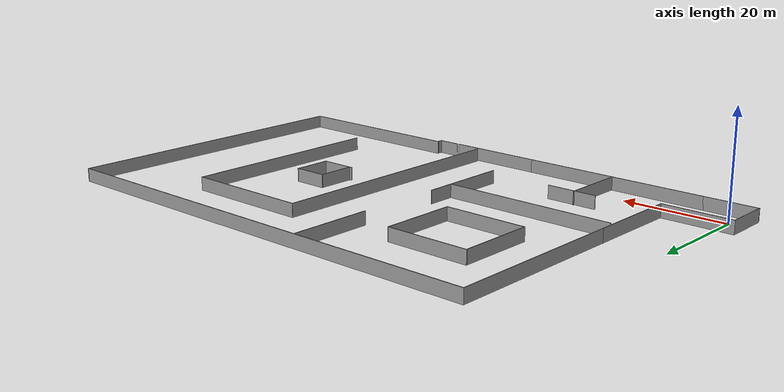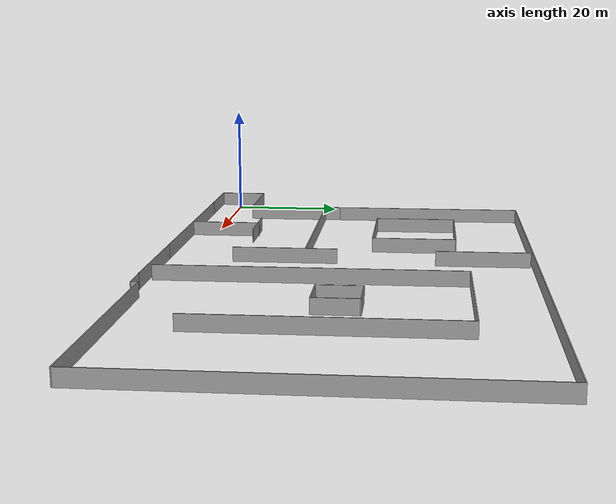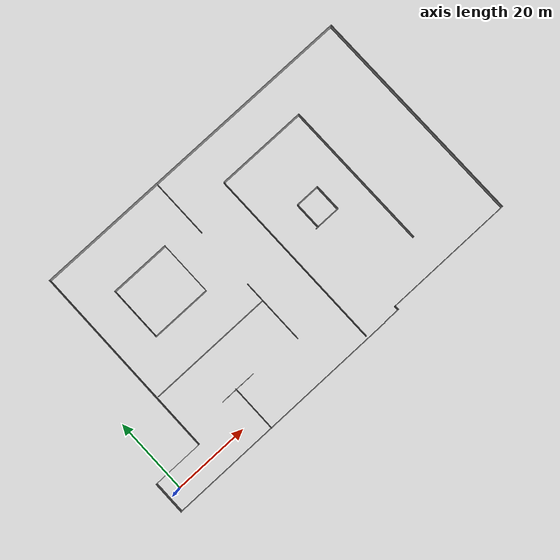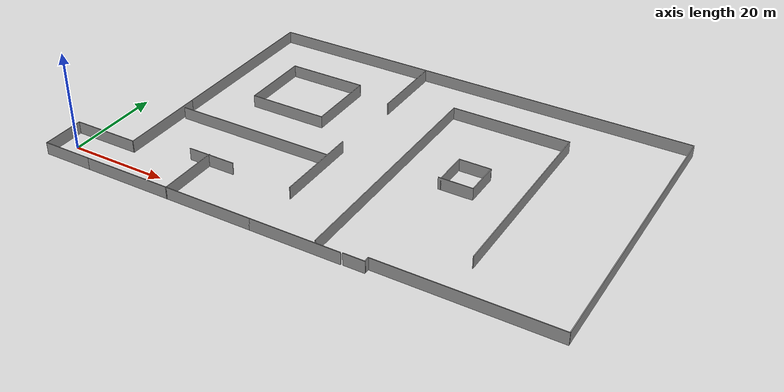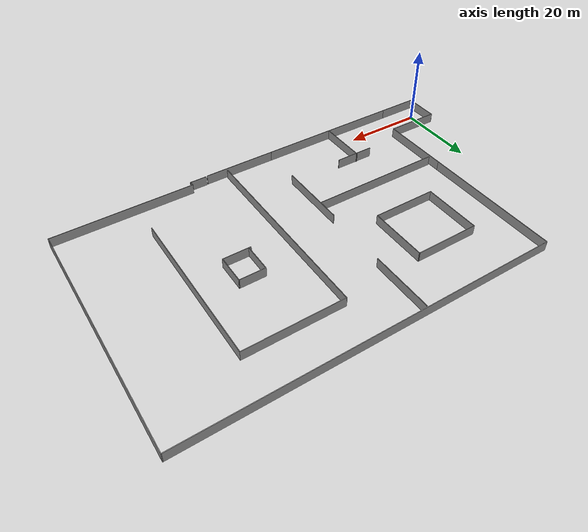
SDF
<?xml version='1.0'?>
<sdf version='1.6'>
  <model name='factory.world'>
    <pose frame=''>48.545 25.9841 0 0 -0 0</pose>
    <link name='Wall_0'>
      <collision name='Wall_0_Collision'>
        <geometry>
          <box>
            <size>10.25 0.15 2.5</size>
          </box>
        </geometry>
        <pose frame=''>0 0 1.25 0 -0 0</pose>
      </collision>
      <visual name='Wall_0_Visual'>
        <pose frame=''>0 0 1.25 0 -0 0</pose>
        <geometry>
          <box>
            <size>10.25 0.15 2.5</size>
          </box>
        </geometry>
        <material>
          <script>
            <uri>file://media/materials/scripts/gazebo.material</uri>
            <name>Gazebo/Grey</name>
          </script>
          <ambient>1 1 1 1</ambient>
        </material>
        <meta>
          <layer>0</layer>
        </meta>
      </visual>
      <pose frame=''>-46.675 -30.2541 0 0 -0 0</pose>
    </link>
    <link name='Wall_10'>
      <collision name='Wall_10_Collision'>
        <geometry>
          <box>
            <size>34.5 0.15 2.5</size>
          </box>
        </geometry>
        <pose frame=''>0 0 1.25 0 -0 0</pose>
      </collision>
      <visual name='Wall_10_Visual'>
        <pose frame=''>0 0 1.25 0 -0 0</pose>
        <geometry>
          <box>
            <size>34.5 0.15 2.5</size>
          </box>
        </geometry>
        <material>
          <script>
            <uri>file://media/materials/scripts/gazebo.material</uri>
            <name>Gazebo/Grey</name>
          </script>
          <ambient>1 1 1 1</ambient>
        </material>
        <meta>
          <layer>0</layer>
        </meta>
      </visual>
      <pose frame=''>-38.375 13.1209 0 0 -0 1.5708</pose>
    </link>
    <link name='Wall_11'>
      <collision name='Wall_11_Collision'>
        <geometry>
          <box>
            <size>90.25 0.15 2.5</size>
          </box>
        </geometry>
        <pose frame=''>0 0 1.25 0 -0 0</pose>
      </collision>
      <visual name='Wall_11_Visual'>
        <pose frame=''>0 0 1.25 0 -0 0</pose>
        <geometry>
          <box>
            <size>90.25 0.15 2.5</size>
          </box>
        </geometry>
        <material>
          <script>
            <uri>file://media/materials/scripts/gazebo.material</uri>
            <name>Gazebo/Grey</name>
          </script>
          <ambient>1 1 1 1</ambient>
        </material>
        <meta>
          <layer>0</layer>
        </meta>
      </visual>
      <pose frame=''>6.675 30.2959 0 0 -0 0</pose>
    </link>
    <link name='Wall_12'>
      <collision name='Wall_12_Collision'>
        <geometry>
          <box>
            <size>59.5 0.15 2.5</size>
          </box>
        </geometry>
        <pose frame=''>0 0 1.25 0 -0 0</pose>
      </collision>
      <visual name='Wall_12_Visual'>
        <pose frame=''>0 0 1.25 0 -0 0</pose>
        <geometry>
          <box>
            <size>59.5 0.15 2.5</size>
          </box>
        </geometry>
        <material>
          <script>
            <uri>file://media/materials/scripts/gazebo.material</uri>
            <name>Gazebo/Grey</name>
          </script>
          <ambient>1 1 1 1</ambient>
        </material>
        <meta>
          <layer>0</layer>
        </meta>
      </visual>
      <pose frame=''>51.725 0.620905 0 0 -0 -1.5708</pose>
    </link>
    <link name='Wall_13'>
      <collision name='Wall_13_Collision'>
        <geometry>
          <box>
            <size>34.75 0.15 2.5</size>
          </box>
        </geometry>
        <pose frame=''>0 0 1.25 0 -0 0</pose>
      </collision>
      <visual name='Wall_13_Visual'>
        <pose frame=''>0 0 1.25 0 -0 0</pose>
        <geometry>
          <box>
            <size>34.75 0.15 2.5</size>
          </box>
        </geometry>
        <material>
          <script>
            <uri>file://media/materials/scripts/gazebo.material</uri>
            <name>Gazebo/Grey</name>
          </script>
          <ambient>1 1 1 1</ambient>
        </material>
        <meta>
          <layer>0</layer>
        </meta>
      </visual>
      <pose frame=''>34.425 -29.0541 0 0 -0 3.14159</pose>
    </link>
    <link name='Wall_14'>
      <collision name='Wall_14_Collision'>
        <geometry>
          <box>
            <size>1.25 0.15 2.5</size>
          </box>
        </geometry>
        <pose frame=''>0 0 1.25 0 -0 0</pose>
      </collision>
      <visual name='Wall_14_Visual'>
        <pose frame=''>0 0 1.25 0 -0 0</pose>
        <geometry>
          <box>
            <size>1.25 0.15 2.5</size>
          </box>
        </geometry>
        <material>
          <script>
            <uri>file://media/materials/scripts/gazebo.material</uri>
            <name>Gazebo/Grey</name>
          </script>
          <ambient>1 1 1 1</ambient>
        </material>
        <meta>
          <layer>0</layer>
        </meta>
      </visual>
      <pose frame=''>17.125 -29.6041 0 0 -0 -1.5708</pose>
    </link>
    <link name='Wall_15'>
      <collision name='Wall_15_Collision'>
        <geometry>
          <box>
            <size>4.25 0.15 2.5</size>
          </box>
        </geometry>
        <pose frame=''>0 0 1.25 0 -0 0</pose>
      </collision>
      <visual name='Wall_15_Visual'>
        <pose frame=''>0 0 1.25 0 -0 0</pose>
        <geometry>
          <box>
            <size>4.25 0.15 2.5</size>
          </box>
        </geometry>
        <material>
          <script>
            <uri>file://media/materials/scripts/gazebo.material</uri>
            <name>Gazebo/Grey</name>
          </script>
          <ambient>1 1 1 1</ambient>
        </material>
        <meta>
          <layer>0</layer>
        </meta>
      </visual>
      <pose frame=''>15.075 -30.1541 0 0 -0 3.14159</pose>
    </link>
    <link name='Wall_2'>
      <collision name='Wall_2_Collision'>
        <geometry>
          <box>
            <size>36.25 0.15 2.5</size>
          </box>
        </geometry>
        <pose frame=''>0 0 1.25 0 -0 0</pose>
      </collision>
      <visual name='Wall_2_Visual'>
        <pose frame=''>0 0 1.25 0 -0 0</pose>
        <geometry>
          <box>
            <size>36.25 0.15 2.5</size>
          </box>
        </geometry>
        <material>
          <script>
            <uri>file://media/materials/scripts/gazebo.material</uri>
            <name>Gazebo/Grey</name>
          </script>
          <ambient>1 1 1 1</ambient>
        </material>
        <meta>
          <layer>0</layer>
        </meta>
      </visual>
      <pose frame=''>-23.575 -30.2541 0 0 -0 0</pose>
    </link>
    <link name='Wall_4'>
      <collision name='Wall_4_Collision'>
        <geometry>
          <box>
            <size>18.25 0.15 2.5</size>
          </box>
        </geometry>
        <pose frame=''>0 0 1.25 0 -0 0</pose>
      </collision>
      <visual name='Wall_4_Visual'>
        <pose frame=''>0 0 1.25 0 -0 0</pose>
        <geometry>
          <box>
            <size>18.25 0.15 2.5</size>
          </box>
        </geometry>
        <material>
          <script>
            <uri>file://media/materials/scripts/gazebo.material</uri>
            <name>Gazebo/Grey</name>
          </script>
          <ambient>1 1 1 1</ambient>
        </material>
        <meta>
          <layer>0</layer>
        </meta>
      </visual>
      <pose frame=''>3.525 -30.2541 0 0 -0 0</pose>
    </link>
    <link name='Wall_41'>
      <collision name='Wall_41_Collision'>
        <geometry>
          <box>
            <size>12.5 0.15 2.5</size>
          </box>
        </geometry>
        <pose frame=''>0 0 1.25 0 -0 0</pose>
      </collision>
      <visual name='Wall_41_Visual'>
        <pose frame=''>0 0 1.25 0 -0 0</pose>
        <geometry>
          <box>
            <size>12.5 0.15 2.5</size>
          </box>
        </geometry>
        <material>
          <script>
            <uri>file://media/materials/scripts/gazebo.material</uri>
            <name>Gazebo/Grey</name>
          </script>
          <ambient>1 1 1 1</ambient>
        </material>
        <meta>
          <layer>0</layer>
        </meta>
      </visual>
      <pose frame=''>-23.4049 -24.1209 0 0 -0 -1.5708</pose>
    </link>
    <link name='Wall_43'>
      <collision name='Wall_43_Collision'>
        <geometry>
          <box>
            <size>33 0.15 2.5</size>
          </box>
        </geometry>
        <pose frame=''>0 0 1.25 0 -0 0</pose>
      </collision>
      <visual name='Wall_43_Visual'>
        <pose frame=''>0 0 1.25 0 -0 0</pose>
        <geometry>
          <box>
            <size>33 0.15 2.5</size>
          </box>
        </geometry>
        <material>
          <script>
            <uri>file://media/materials/scripts/gazebo.material</uri>
            <name>Gazebo/Grey</name>
          </script>
          <ambient>1 1 1 1</ambient>
        </material>
        <meta>
          <layer>0</layer>
        </meta>
      </visual>
      <pose frame=''>-21.3713 -7.0283 0 0 -0 0</pose>
    </link>
    <link name='Wall_45'>
      <collision name='Wall_45_Collision'>
        <geometry>
          <box>
            <size>17.5 0.15 2.5</size>
          </box>
        </geometry>
        <pose frame=''>0 0 1.25 0 -0 0</pose>
      </collision>
      <visual name='Wall_45_Visual'>
        <pose frame=''>0 0 1.25 0 -0 0</pose>
        <geometry>
          <box>
            <size>17.5 0.15 2.5</size>
          </box>
        </geometry>
        <material>
          <script>
            <uri>file://media/materials/scripts/gazebo.material</uri>
            <name>Gazebo/Grey</name>
          </script>
          <ambient>1 1 1 1</ambient>
        </material>
        <meta>
          <layer>0</layer>
        </meta>
      </visual>
      <pose frame=''>-4.79535 -10.4926 0 0 -0 -1.5708</pose>
    </link>
    <link name='Wall_47'>
      <collision name='Wall_47_Collision'>
        <geometry>
          <box>
            <size>49.5 0.15 2.5</size>
          </box>
        </geometry>
        <pose frame=''>0 0 1.25 0 -0 0</pose>
      </collision>
      <visual name='Wall_47_Visual'>
        <pose frame=''>0 0 1.25 0 -0 0</pose>
        <geometry>
          <box>
            <size>49.5 0.15 2.5</size>
          </box>
        </geometry>
        <material>
          <script>
            <uri>file://media/materials/scripts/gazebo.material</uri>
            <name>Gazebo/Grey</name>
          </script>
          <ambient>1 1 1 1</ambient>
        </material>
        <meta>
          <layer>0</layer>
        </meta>
      </visual>
      <pose frame=''>7.3629 -4.9329 0 0 -0 1.5708</pose>
    </link>
    <link name='Wall_48'>
      <collision name='Wall_48_Collision'>
        <geometry>
          <box>
            <size>24.25 0.15 2.5</size>
          </box>
        </geometry>
        <pose frame=''>0 0 1.25 0 -0 0</pose>
      </collision>
      <visual name='Wall_48_Visual'>
        <pose frame=''>0 0 1.25 0 -0 0</pose>
        <geometry>
          <box>
            <size>24.25 0.15 2.5</size>
          </box>
        </geometry>
        <material>
          <script>
            <uri>file://media/materials/scripts/gazebo.material</uri>
            <name>Gazebo/Grey</name>
          </script>
          <ambient>1 1 1 1</ambient>
        </material>
        <meta>
          <layer>0</layer>
        </meta>
      </visual>
      <pose frame=''>19.4129 19.7421 0 0 -0 0</pose>
    </link>
    <link name='Wall_49'>
      <collision name='Wall_49_Collision'>
        <geometry>
          <box>
            <size>40 0.15 2.5</size>
          </box>
        </geometry>
        <pose frame=''>0 0 1.25 0 -0 0</pose>
      </collision>
      <visual name='Wall_49_Visual'>
        <pose frame=''>0 0 1.25 0 -0 0</pose>
        <geometry>
          <box>
            <size>40 0.15 2.5</size>
          </box>
        </geometry>
        <material>
          <script>
            <uri>file://media/materials/scripts/gazebo.material</uri>
            <name>Gazebo/Grey</name>
          </script>
          <ambient>1 1 1 1</ambient>
        </material>
        <meta>
          <layer>0</layer>
        </meta>
      </visual>
      <pose frame=''>31.4629 -0.182902 0 0 -0 -1.5708</pose>
    </link>
    <link name='Wall_51'>
      <collision name='Wall_51_Collision'>
        <geometry>
          <box>
            <size>7 0.15 2.5</size>
          </box>
        </geometry>
        <pose frame=''>0 0 1.25 0 -0 0</pose>
      </collision>
      <visual name='Wall_51_Visual'>
        <pose frame=''>0 0 1.25 0 -0 0</pose>
        <geometry>
          <box>
            <size>7 0.15 2.5</size>
          </box>
        </geometry>
        <material>
          <script>
            <uri>file://media/materials/scripts/gazebo.material</uri>
            <name>Gazebo/Grey</name>
          </script>
          <ambient>1 1 1 1</ambient>
        </material>
        <meta>
          <layer>0</layer>
        </meta>
      </visual>
      <pose frame=''>19.4724 -3.05825 0 0 -0 0</pose>
    </link>
    <link name='Wall_52'>
      <collision name='Wall_52_Collision'>
        <geometry>
          <box>
            <size>7.25 0.15 2.5</size>
          </box>
        </geometry>
        <pose frame=''>0 0 1.25 0 -0 0</pose>
      </collision>
      <visual name='Wall_52_Visual'>
        <pose frame=''>0 0 1.25 0 -0 0</pose>
        <geometry>
          <box>
            <size>7.25 0.15 2.5</size>
          </box>
        </geometry>
        <material>
          <script>
            <uri>file://media/materials/scripts/gazebo.material</uri>
            <name>Gazebo/Grey</name>
          </script>
          <ambient>1 1 1 1</ambient>
        </material>
        <meta>
          <layer>0</layer>
        </meta>
      </visual>
      <pose frame=''>22.8974 0.491745 0 0 -0 1.5708</pose>
    </link>
    <link name='Wall_53'>
      <collision name='Wall_53_Collision'>
        <geometry>
          <box>
            <size>6.5 0.15 2.5</size>
          </box>
        </geometry>
        <pose frame=''>0 0 1.25 0 -0 0</pose>
      </collision>
      <visual name='Wall_53_Visual'>
        <pose frame=''>0 0 1.25 0 -0 0</pose>
        <geometry>
          <box>
            <size>6.5 0.15 2.5</size>
          </box>
        </geometry>
        <material>
          <script>
            <uri>file://media/materials/scripts/gazebo.material</uri>
            <name>Gazebo/Grey</name>
          </script>
          <ambient>1 1 1 1</ambient>
        </material>
        <meta>
          <layer>0</layer>
        </meta>
      </visual>
      <pose frame=''>19.7224 4.04174 0 0 -0 3.14159</pose>
    </link>
    <link name='Wall_54'>
      <collision name='Wall_54_Collision'>
        <geometry>
          <box>
            <size>7.25 0.15 2.5</size>
          </box>
        </geometry>
        <pose frame=''>0 0 1.25 0 -0 0</pose>
      </collision>
      <visual name='Wall_54_Visual'>
        <pose frame=''>0 0 1.25 0 -0 0</pose>
        <geometry>
          <box>
            <size>7.25 0.15 2.5</size>
          </box>
        </geometry>
        <material>
          <script>
            <uri>file://media/materials/scripts/gazebo.material</uri>
            <name>Gazebo/Grey</name>
          </script>
          <ambient>1 1 1 1</ambient>
        </material>
        <meta>
          <layer>0</layer>
        </meta>
      </visual>
      <pose frame=''>16.5474 0.491745 0 0 -0 -1.5708</pose>
    </link>
    <link name='Wall_56'>
      <collision name='Wall_56_Collision'>
        <geometry>
          <box>
            <size>14.5 0.15 2.5</size>
          </box>
        </geometry>
        <pose frame=''>0 0 1.25 0 -0 0</pose>
      </collision>
      <visual name='Wall_56_Visual'>
        <pose frame=''>0 0 1.25 0 -0 0</pose>
        <geometry>
          <box>
            <size>14.5 0.15 2.5</size>
          </box>
        </geometry>
        <material>
          <script>
            <uri>file://media/materials/scripts/gazebo.material</uri>
            <name>Gazebo/Grey</name>
          </script>
          <ambient>1 1 1 1</ambient>
        </material>
        <meta>
          <layer>0</layer>
        </meta>
      </visual>
      <pose frame=''>-28.8502 10.8576 0 0 -0 -1.5708</pose>
    </link>
    <link name='Wall_57'>
      <collision name='Wall_57_Collision'>
        <geometry>
          <box>
            <size>16 0.15 2.5</size>
          </box>
        </geometry>
        <pose frame=''>0 0 1.25 0 -0 0</pose>
      </collision>
      <visual name='Wall_57_Visual'>
        <pose frame=''>0 0 1.25 0 -0 0</pose>
        <geometry>
          <box>
            <size>16 0.15 2.5</size>
          </box>
        </geometry>
        <material>
          <script>
            <uri>file://media/materials/scripts/gazebo.material</uri>
            <name>Gazebo/Grey</name>
          </script>
          <ambient>1 1 1 1</ambient>
        </material>
        <meta>
          <layer>0</layer>
        </meta>
      </visual>
      <pose frame=''>-20.9252 3.68259 0 0 -0 0</pose>
    </link>
    <link name='Wall_58'>
      <collision name='Wall_58_Collision'>
        <geometry>
          <box>
            <size>14.5 0.15 2.5</size>
          </box>
        </geometry>
        <pose frame=''>0 0 1.25 0 -0 0</pose>
      </collision>
      <visual name='Wall_58_Visual'>
        <pose frame=''>0 0 1.25 0 -0 0</pose>
        <geometry>
          <box>
            <size>14.5 0.15 2.5</size>
          </box>
        </geometry>
        <material>
          <script>
            <uri>file://media/materials/scripts/gazebo.material</uri>
            <name>Gazebo/Grey</name>
          </script>
          <ambient>1 1 1 1</ambient>
        </material>
        <meta>
          <layer>0</layer>
        </meta>
      </visual>
      <pose frame=''>-13.0002 10.8576 0 0 -0 1.5708</pose>
    </link>
    <link name='Wall_59'>
      <collision name='Wall_59_Collision'>
        <geometry>
          <box>
            <size>16 0.15 2.5</size>
          </box>
        </geometry>
        <pose frame=''>0 0 1.25 0 -0 0</pose>
      </collision>
      <visual name='Wall_59_Visual'>
        <pose frame=''>0 0 1.25 0 -0 0</pose>
        <geometry>
          <box>
            <size>16 0.15 2.5</size>
          </box>
        </geometry>
        <material>
          <script>
            <uri>file://media/materials/scripts/gazebo.material</uri>
            <name>Gazebo/Grey</name>
          </script>
          <ambient>1 1 1 1</ambient>
        </material>
        <meta>
          <layer>0</layer>
        </meta>
      </visual>
      <pose frame=''>-20.9252 18.0326 0 0 -0 3.14159</pose>
    </link>
    <link name='Wall_6'>
      <collision name='Wall_6_Collision'>
        <geometry>
          <box>
            <size>8.75 0.15 2.5</size>
          </box>
        </geometry>
        <pose frame=''>0 0 1.25 0 -0 0</pose>
      </collision>
      <visual name='Wall_6_Visual'>
        <pose frame=''>0 0 1.25 0 -0 0</pose>
        <geometry>
          <box>
            <size>8.75 0.15 2.5</size>
          </box>
        </geometry>
        <material>
          <script>
            <uri>file://media/materials/scripts/gazebo.material</uri>
            <name>Gazebo/Grey</name>
          </script>
          <ambient>1 1 1 1</ambient>
        </material>
        <meta>
          <layer>0</layer>
        </meta>
      </visual>
      <pose frame=''>-51.725 -25.9541 0 0 -0 1.5708</pose>
    </link>
    <link name='Wall_61'>
      <collision name='Wall_61_Collision'>
        <geometry>
          <box>
            <size>15.5 0.15 2.5</size>
          </box>
        </geometry>
        <pose frame=''>0 0 1.25 0 -0 0</pose>
      </collision>
      <visual name='Wall_61_Visual'>
        <pose frame=''>0 0 1.25 0 -0 0</pose>
        <geometry>
          <box>
            <size>15.5 0.15 2.5</size>
          </box>
        </geometry>
        <material>
          <script>
            <uri>file://media/materials/scripts/gazebo.material</uri>
            <name>Gazebo/Grey</name>
          </script>
          <ambient>1 1 1 1</ambient>
        </material>
        <meta>
          <layer>0</layer>
        </meta>
      </visual>
      <pose frame=''>-4.53372 22.2338 0 0 -0 1.5708</pose>
    </link>
    <link name='Wall_63'>
      <collision name='Wall_63_Collision'>
        <geometry>
          <box>
            <size>9.75 0.15 2.5</size>
          </box>
        </geometry>
        <pose frame=''>0 0 1.25 0 -0 0</pose>
      </collision>
      <visual name='Wall_63_Visual'>
        <pose frame=''>0 0 1.25 0 -0 0</pose>
        <geometry>
          <box>
            <size>9.75 0.15 2.5</size>
          </box>
        </geometry>
        <material>
          <script>
            <uri>file://media/materials/scripts/gazebo.material</uri>
            <name>Gazebo/Grey</name>
          </script>
          <ambient>1 1 1 1</ambient>
        </material>
        <meta>
          <layer>0</layer>
        </meta>
      </visual>
      <pose frame=''>-22.8249 -18.1328 0 0 -0 0</pose>
    </link>
    <link name='Wall_7'>
      <collision name='Wall_7_Collision'>
        <geometry>
          <box>
            <size>13.5 0.15 2.5</size>
          </box>
        </geometry>
        <pose frame=''>0 0 1.25 0 -0 0</pose>
      </collision>
      <visual name='Wall_7_Visual'>
        <pose frame=''>0 0 1.25 0 -0 0</pose>
        <geometry>
          <box>
            <size>13.5 0.15 2.5</size>
          </box>
        </geometry>
        <material>
          <script>
            <uri>file://media/materials/scripts/gazebo.material</uri>
            <name>Gazebo/Grey</name>
          </script>
          <ambient>1 1 1 1</ambient>
        </material>
        <meta>
          <layer>0</layer>
        </meta>
      </visual>
      <pose frame=''>-45.05 -21.6541 0 0 -0 0</pose>
    </link>
    <link name='Wall_8'>
      <collision name='Wall_8_Collision'>
        <geometry>
          <box>
            <size>17.75 0.15 2.5</size>
          </box>
        </geometry>
        <pose frame=''>0 0 1.25 0 -0 0</pose>
      </collision>
      <visual name='Wall_8_Visual'>
        <pose frame=''>0 0 1.25 0 -0 0</pose>
        <geometry>
          <box>
            <size>17.75 0.15 2.5</size>
          </box>
        </geometry>
        <material>
          <script>
            <uri>file://media/materials/scripts/gazebo.material</uri>
            <name>Gazebo/Grey</name>
          </script>
          <ambient>1 1 1 1</ambient>
        </material>
        <meta>
          <layer>0</layer>
        </meta>
      </visual>
      <pose frame=''>-38.375 -12.8541 0 0 -0 1.5708</pose>
    </link>
    <static>1</static>
  </model>
</sdf>
